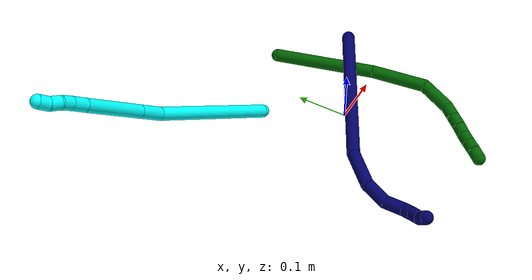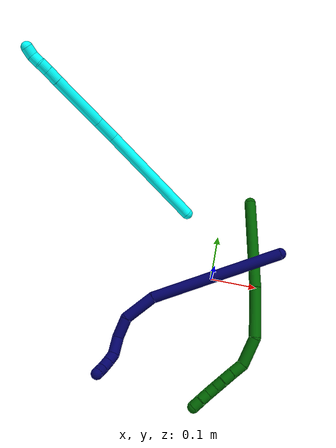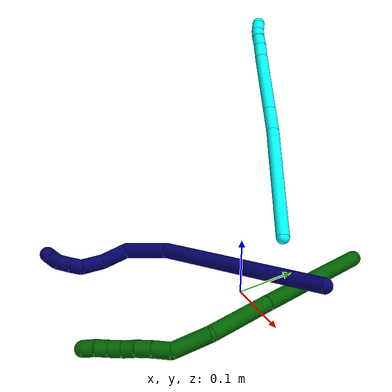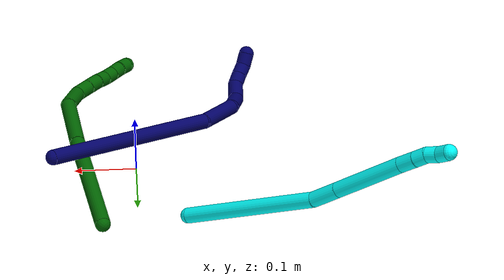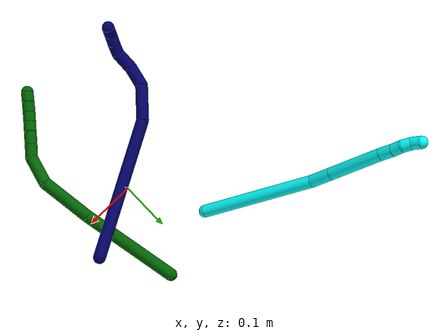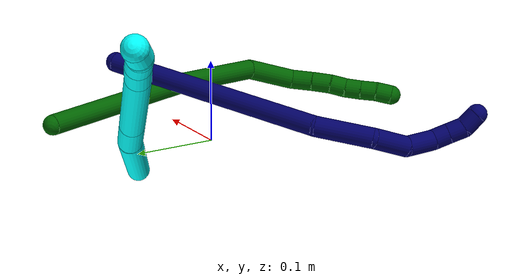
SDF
<sdf version="1.7">
 <world name="default">
  <model name="photoneo_s_sensor">
   <static>1</static>
   <pose>0 0 2 1.57079 1.57079 3.14159</pose>
   <link name="link">
    <inertial><mass>0.1</mass></inertial>
    <sensor name="sensor" type="depth">
     <update_rate>30</update_rate>
     <camera>
      <horizontal_fov>1.22</horizontal_fov>
      <image><width>1920</width><height>1200</height><format>B8G8R8</format></image>
      <clip><near>0.1</near><far>4</far></clip>
      <depth_camera><output>points</output></depth_camera>
     </camera>
     <plugin name="camera_plugin" filename="libgazebo_ros_depth_camera.so">
      <baseline>0.2</baseline>
      <alwaysOn>1</alwaysOn>
      <updateRate>0.0</updateRate>
      <cameraName>camera_ir</cameraName>
      <imageTopicName>/camera/color/image_raw</imageTopicName>
      <cameraInfoTopicName>/camera/color/camera_info</cameraInfoTopicName>
      <depthImageTopicName>/camera/depth/image_raw</depthImageTopicName>
      <depthImageCameraInfoTopicName>/camera/depth/camera_info</depthImageCameraInfoTopicName>
      <pointCloudTopicName>/camera/depth/points</pointCloudTopicName>
      <frameName>fr_optical</frameName>
      <pointCloudCutoff>0.1</pointCloudCutoff>
      <pointCloudCutoffMax>2.0</pointCloudCutoffMax>
      <distortionK1>0</distortionK1>
      <distortionK2>0</distortionK2>
      <distortionK3>0</distortionK3>
      <distortionT1>0</distortionT1>
      <distortionT2>0</distortionT2>
      <CxPrime>0</CxPrime>
      <Cx>0</Cx>
      <Cy>0</Cy>
      <focalLength>0</focalLength>
      <hackBaseline>0</hackBaseline>
     </plugin>
    </sensor>
   </link>
  </model>
  <model name="bin">
   <static>1</static>
   <link name="bottom">
    <collision name="collision-bottom">
     <pose>0 0 -0.01 0 -0 0</pose>
     <geometry><box><size>0.8 0.6 0.02</size></box></geometry>
     <surface>
      <friction><ode><mu>100</mu><mu2>100</mu2></ode></friction>
      <contact><collide_bitmask>65535</collide_bitmask></contact>
     </surface>
    </collision>
   </link>
   <link name="west_wall">
    <collision name="collision-west_wall">
     <pose>-0.41 0 0.1 0 -0 0</pose>
     <geometry><box><size>0.02 0.6 0.2</size></box></geometry>
     <surface>
      <friction><ode><mu>100</mu><mu2>100</mu2></ode></friction>
      <contact><collide_bitmask>65535</collide_bitmask></contact>
     </surface>
    </collision>
   </link>
   <link name="east_wall">
    <collision name="collision-east_wall">
     <pose>0.41 0 0.1 0 -0 0</pose>
     <geometry><box><size>0.02 0.6 0.2</size></box></geometry>
     <surface>
      <friction><ode><mu>100</mu><mu2>100</mu2></ode></friction>
      <contact><collide_bitmask>65535</collide_bitmask></contact>
     </surface>
    </collision>
   </link>
   <link name="south_wall">
    <collision name="collision-south_wall">
     <pose>0 -0.31 0.1 0 -0 0</pose>
     <geometry><box><size>0.8 0.02 0.2</size></box></geometry>
     <surface>
      <friction><ode><mu>100</mu><mu2>100</mu2></ode></friction>
      <contact><collide_bitmask>65535</collide_bitmask></contact>
     </surface>
    </collision>
   </link>
   <link name="north_wall">
    <collision name="collision-north_wall">
     <pose>0 0.31 0.1 0 -0 0</pose>
     <geometry><box><size>0.8 0.02 0.2</size></box></geometry>
     <surface>
      <friction><ode><mu>100</mu><mu2>100</mu2></ode></friction>
      <contact><collide_bitmask>65535</collide_bitmask></contact>
     </surface>
    </collision>
   </link>
  </model>
  <model name="3">
   <static>0</static>
   <link name="3">
    <collision name="collision-cylinder-e_1_1_4">
     <pose>-0.012061 0.01303 0.11854 -0.10948 -0.100792 0.005528</pose>
     <geometry><cylinder><radius>0.0125</radius><length>0.239725</length></cylinder></geometry>
     <surface>
      <friction><ode><mu>1.16</mu><mu2>1.16</mu2><slip1>0</slip1><slip2>0</slip2></ode></friction>
      <contact><ode><kp>1e+06</kp><kd>1</kd><max_vel>0</max_vel><min_depth>0.001</min_depth></ode></contact>
     </surface>
    </collision>
    <visual name="visual-cylinder-e_1_1_4">
     <pose>-0.012061 0.01303 0.11854 -0.10948 -0.100792 0.005528</pose>
     <geometry><cylinder><radius>0.0125</radius><length>0.239725</length></cylinder></geometry>
     <material><ambient>0.003922 1 0.996078 1</ambient></material>
    </visual>
    <collision name="collision-cylinder-e_2_4_5">
     <pose>-0.029994 0.025009 0.260518 0.044815 -0.245278 -0.005525</pose>
     <geometry><cylinder><radius>0.0125</radius><length>0.048371</length></cylinder></geometry>
     <surface>
      <friction><ode><mu>1.16</mu><mu2>1.16</mu2><slip1>0</slip1><slip2>0</slip2></ode></friction>
      <contact><ode><kp>1e+06</kp><kd>1</kd><max_vel>0</max_vel><min_depth>0.001</min_depth></ode></contact>
     </surface>
    </collision>
    <visual name="visual-cylinder-e_2_4_5">
     <pose>-0.029994 0.025009 0.260518 0.044815 -0.245278 -0.005525</pose>
     <geometry><cylinder><radius>0.0125</radius><length>0.048371</length></cylinder></geometry>
     <material><ambient>0.003922 1 0.996078 1</ambient></material>
    </visual>
    <collision name="collision-cylinder-e_3_5_6">
     <pose>-0.05082 0.021199 0.343002 0.046687 -0.247777 -0.005815</pose>
     <geometry><cylinder><radius>0.0125</radius><length>0.121943</length></cylinder></geometry>
     <surface>
      <friction><ode><mu>1.16</mu><mu2>1.16</mu2><slip1>0</slip1><slip2>0</slip2></ode></friction>
      <contact><ode><kp>1e+06</kp><kd>1</kd><max_vel>0</max_vel><min_depth>0.001</min_depth></ode></contact>
     </surface>
    </collision>
    <visual name="visual-cylinder-e_3_5_6">
     <pose>-0.05082 0.021199 0.343002 0.046687 -0.247777 -0.005815</pose>
     <geometry><cylinder><radius>0.0125</radius><length>0.121943</length></cylinder></geometry>
     <material><ambient>0.003922 1 0.996078 1</ambient></material>
    </visual>
    <collision name="collision-cylinder-e_4_6_7">
     <pose>-0.068657 0.01776 0.415965 0.04884 -0.20404 -0.005001</pose>
     <geometry><cylinder><radius>0.0125</radius><length>0.02846</length></cylinder></geometry>
     <surface>
      <friction><ode><mu>1.16</mu><mu2>1.16</mu2><slip1>0</slip1><slip2>0</slip2></ode></friction>
      <contact><ode><kp>1e+06</kp><kd>1</kd><max_vel>0</max_vel><min_depth>0.001</min_depth></ode></contact>
     </surface>
    </collision>
    <visual name="visual-cylinder-e_4_6_7">
     <pose>-0.068657 0.01776 0.415965 0.04884 -0.20404 -0.005001</pose>
     <geometry><cylinder><radius>0.0125</radius><length>0.02846</length></cylinder></geometry>
     <material><ambient>0.003922 1 0.996078 1</ambient></material>
    </visual>
    <collision name="collision-cylinder-e_5_7_8">
     <pose>-0.074314 0.017017 0.440088 0.006168 -0.265338 -0.000823</pose>
     <geometry><cylinder><radius>0.0125</radius><length>0.021152</length></cylinder></geometry>
     <surface>
      <friction><ode><mu>1.16</mu><mu2>1.16</mu2><slip1>0</slip1><slip2>0</slip2></ode></friction>
      <contact><ode><kp>1e+06</kp><kd>1</kd><max_vel>0</max_vel><min_depth>0.001</min_depth></ode></contact>
     </surface>
    </collision>
    <visual name="visual-cylinder-e_5_7_8">
     <pose>-0.074314 0.017017 0.440088 0.006168 -0.265338 -0.000823</pose>
     <geometry><cylinder><radius>0.0125</radius><length>0.021152</length></cylinder></geometry>
     <material><ambient>0.003922 1 0.996078 1</ambient></material>
    </visual>
    <collision name="collision-cylinder-e_6_8_9">
     <pose>-0.077675 0.019047 0.46012 -0.209875 -0.058485 0.006162</pose>
     <geometry><cylinder><radius>0.0125</radius><length>0.020128</length></cylinder></geometry>
     <surface>
      <friction><ode><mu>1.16</mu><mu2>1.16</mu2><slip1>0</slip1><slip2>0</slip2></ode></friction>
      <contact><ode><kp>1e+06</kp><kd>1</kd><max_vel>0</max_vel><min_depth>0.001</min_depth></ode></contact>
     </surface>
    </collision>
    <visual name="visual-cylinder-e_6_8_9">
     <pose>-0.077675 0.019047 0.46012 -0.209875 -0.058485 0.006162</pose>
     <geometry><cylinder><radius>0.0125</radius><length>0.020128</length></cylinder></geometry>
     <material><ambient>0.003922 1 0.996078 1</ambient></material>
    </visual>
    <collision name="collision-cylinder-e_7_9_2">
     <pose>-0.078443 0.020338 0.480024 0.079439 -0.017704 -0.000704</pose>
     <geometry><cylinder><radius>0.0125</radius><length>0.020222</length></cylinder></geometry>
     <surface>
      <friction><ode><mu>1.16</mu><mu2>1.16</mu2><slip1>0</slip1><slip2>0</slip2></ode></friction>
      <contact><ode><kp>1e+06</kp><kd>1</kd><max_vel>0</max_vel><min_depth>0.001</min_depth></ode></contact>
     </surface>
    </collision>
    <visual name="visual-cylinder-e_7_9_2">
     <pose>-0.078443 0.020338 0.480024 0.079439 -0.017704 -0.000704</pose>
     <geometry><cylinder><radius>0.0125</radius><length>0.020222</length></cylinder></geometry>
     <material><ambient>0.003922 1 0.996078 1</ambient></material>
    </visual>
    <collision name="collision-sphere-2">
     <pose>-0.078622 0.019535 0.490101 0 -0 0</pose>
     <geometry><sphere><radius>0.0125</radius></sphere></geometry>
     <surface>
      <friction><ode><mu>1.16</mu><mu2>1.16</mu2><slip1>0</slip1><slip2>0</slip2></ode></friction>
      <contact><ode><kp>1e+06</kp><kd>1</kd><max_vel>0</max_vel><min_depth>0.001</min_depth></ode></contact>
     </surface>
    </collision>
    <visual name="visual-sphere-2">
     <pose>-0.078622 0.019535 0.490101 0 -0 0</pose>
     <geometry><sphere><radius>0.0125</radius></sphere></geometry>
     <material><ambient>0.003922 1 0.996078 1</ambient></material>
    </visual>
    <collision name="collision-sphere-9">
     <pose>-0.078264 0.02114 0.469946 0 -0 0</pose>
     <geometry><sphere><radius>0.0125</radius></sphere></geometry>
     <surface>
      <friction><ode><mu>1.16</mu><mu2>1.16</mu2><slip1>0</slip1><slip2>0</slip2></ode></friction>
      <contact><ode><kp>1e+06</kp><kd>1</kd><max_vel>0</max_vel><min_depth>0.001</min_depth></ode></contact>
     </surface>
    </collision>
    <visual name="visual-sphere-9">
     <pose>-0.078264 0.02114 0.469946 0 -0 0</pose>
     <geometry><sphere><radius>0.0125</radius></sphere></geometry>
     <material><ambient>0.003922 1 0.996078 1</ambient></material>
    </visual>
    <collision name="collision-sphere-4">
     <pose>-0.024122 0.02606 0.23708 0 -0 0</pose>
     <geometry><sphere><radius>0.0125</radius></sphere></geometry>
     <surface>
      <friction><ode><mu>1.16</mu><mu2>1.16</mu2><slip1>0</slip1><slip2>0</slip2></ode></friction>
      <contact><ode><kp>1e+06</kp><kd>1</kd><max_vel>0</max_vel><min_depth>0.001</min_depth></ode></contact>
     </surface>
    </collision>
    <visual name="visual-sphere-4">
     <pose>-0.024122 0.02606 0.23708 0 -0 0</pose>
     <geometry><sphere><radius>0.0125</radius></sphere></geometry>
     <material><ambient>0.003922 1 0.996078 1</ambient></material>
    </visual>
    <collision name="collision-sphere-1">
     <geometry><sphere><radius>0.0125</radius></sphere></geometry>
     <surface>
      <friction><ode><mu>1.16</mu><mu2>1.16</mu2><slip1>0</slip1><slip2>0</slip2></ode></friction>
      <contact><ode><kp>1e+06</kp><kd>1</kd><max_vel>0</max_vel><min_depth>0.001</min_depth></ode></contact>
     </surface>
    </collision>
    <visual name="visual-sphere-1">
     <geometry><sphere><radius>0.0125</radius></sphere></geometry>
     <material><ambient>0.003922 1 0.996078 1</ambient></material>
    </visual>
    <collision name="collision-sphere-8">
     <pose>-0.077087 0.016954 0.450294 0 -0 0</pose>
     <geometry><sphere><radius>0.0125</radius></sphere></geometry>
     <surface>
      <friction><ode><mu>1.16</mu><mu2>1.16</mu2><slip1>0</slip1><slip2>0</slip2></ode></friction>
      <contact><ode><kp>1e+06</kp><kd>1</kd><max_vel>0</max_vel><min_depth>0.001</min_depth></ode></contact>
     </surface>
    </collision>
    <visual name="visual-sphere-8">
     <pose>-0.077087 0.016954 0.450294 0 -0 0</pose>
     <geometry><sphere><radius>0.0125</radius></sphere></geometry>
     <material><ambient>0.003922 1 0.996078 1</ambient></material>
    </visual>
    <collision name="collision-sphere-5">
     <pose>-0.035867 0.023958 0.283957 0 -0 0</pose>
     <geometry><sphere><radius>0.0125</radius></sphere></geometry>
     <surface>
      <friction><ode><mu>1.16</mu><mu2>1.16</mu2><slip1>0</slip1><slip2>0</slip2></ode></friction>
      <contact><ode><kp>1e+06</kp><kd>1</kd><max_vel>0</max_vel><min_depth>0.001</min_depth></ode></contact>
     </surface>
    </collision>
    <visual name="visual-sphere-5">
     <pose>-0.035867 0.023958 0.283957 0 -0 0</pose>
     <geometry><sphere><radius>0.0125</radius></sphere></geometry>
     <material><ambient>0.003922 1 0.996078 1</ambient></material>
    </visual>
    <collision name="collision-sphere-6">
     <pose>-0.065774 0.01844 0.402046 0 -0 0</pose>
     <geometry><sphere><radius>0.0125</radius></sphere></geometry>
     <surface>
      <friction><ode><mu>1.16</mu><mu2>1.16</mu2><slip1>0</slip1><slip2>0</slip2></ode></friction>
      <contact><ode><kp>1e+06</kp><kd>1</kd><max_vel>0</max_vel><min_depth>0.001</min_depth></ode></contact>
     </surface>
    </collision>
    <visual name="visual-sphere-6">
     <pose>-0.065774 0.01844 0.402046 0 -0 0</pose>
     <geometry><sphere><radius>0.0125</radius></sphere></geometry>
     <material><ambient>0.003922 1 0.996078 1</ambient></material>
    </visual>
    <collision name="collision-sphere-7">
     <pose>-0.07154 0.01708 0.429883 0 -0 0</pose>
     <geometry><sphere><radius>0.0125</radius></sphere></geometry>
     <surface>
      <friction><ode><mu>1.16</mu><mu2>1.16</mu2><slip1>0</slip1><slip2>0</slip2></ode></friction>
      <contact><ode><kp>1e+06</kp><kd>1</kd><max_vel>0</max_vel><min_depth>0.001</min_depth></ode></contact>
     </surface>
    </collision>
    <visual name="visual-sphere-7">
     <pose>-0.07154 0.01708 0.429883 0 -0 0</pose>
     <geometry><sphere><radius>0.0125</radius></sphere></geometry>
     <material><ambient>0.003922 1 0.996078 1</ambient></material>
    </visual>
    <inertial>
     <pose>-0.03443 0.017157 0.24592 0 -0 0</pose>
     <mass>0.5</mass>
     <inertia><ixx>0.00132</ixx><ixy>0</ixy><ixz>0</ixz><iyy>0.001332</iyy><iyz>0</iyz><izz>7.9e-05</izz></inertia>
    </inertial>
   </link>
   <pose>-0.079342 0.139931 0.011487 -1.0122 0.38268 1.14662</pose>
  </model>
  <model name="6">
   <static>0</static>
   <link name="6">
    <collision name="collision-cylinder-e_1_1_4">
     <pose>0.036611 -0.050736 0.078572 0.573364 0.373105 0.111172</pose>
     <geometry><cylinder><radius>0.0125</radius><length>0.200879</length></cylinder></geometry>
     <surface>
      <friction><ode><mu>1.16</mu><mu2>1.16</mu2><slip1>0</slip1><slip2>0</slip2></ode></friction>
      <contact><ode><kp>1e+06</kp><kd>1</kd><max_vel>0</max_vel><min_depth>0.001</min_depth></ode></contact>
     </surface>
    </collision>
    <visual name="visual-cylinder-e_1_1_4">
     <pose>0.036611 -0.050736 0.078572 0.573364 0.373105 0.111172</pose>
     <geometry><cylinder><radius>0.0125</radius><length>0.200879</length></cylinder></geometry>
     <material><ambient>0 0.392157 0.003922 1</ambient></material>
    </visual>
    <collision name="collision-cylinder-e_2_4_5">
     <pose>0.096732 -0.129204 0.195959 0.62037 0.45791 0.149117</pose>
     <geometry><cylinder><radius>0.0125</radius><length>0.106365</length></cylinder></geometry>
     <surface>
      <friction><ode><mu>1.16</mu><mu2>1.16</mu2><slip1>0</slip1><slip2>0</slip2></ode></friction>
      <contact><ode><kp>1e+06</kp><kd>1</kd><max_vel>0</max_vel><min_depth>0.001</min_depth></ode></contact>
     </surface>
    </collision>
    <visual name="visual-cylinder-e_2_4_5">
     <pose>0.096732 -0.129204 0.195959 0.62037 0.45791 0.149117</pose>
     <geometry><cylinder><radius>0.0125</radius><length>0.106365</length></cylinder></geometry>
     <material><ambient>0 0.392157 0.003922 1</ambient></material>
    </visual>
    <collision name="collision-cylinder-e_3_5_6">
     <pose>0.140982 -0.176184 0.244881 1.08726 0.761805 0.474922</pose>
     <geometry><cylinder><radius>0.0125</radius><length>0.060093</length></cylinder></geometry>
     <surface>
      <friction><ode><mu>1.16</mu><mu2>1.16</mu2><slip1>0</slip1><slip2>0</slip2></ode></friction>
      <contact><ode><kp>1e+06</kp><kd>1</kd><max_vel>0</max_vel><min_depth>0.001</min_depth></ode></contact>
     </surface>
    </collision>
    <visual name="visual-cylinder-e_3_5_6">
     <pose>0.140982 -0.176184 0.244881 1.08726 0.761805 0.474922</pose>
     <geometry><cylinder><radius>0.0125</radius><length>0.060093</length></cylinder></geometry>
     <material><ambient>0 0.392157 0.003922 1</ambient></material>
    </visual>
    <collision name="collision-cylinder-e_4_6_7">
     <pose>0.16766 -0.20814 0.254921 1.57614 0.437189 0.439456</pose>
     <geometry><cylinder><radius>0.0125</radius><length>0.028053</length></cylinder></geometry>
     <surface>
      <friction><ode><mu>1.16</mu><mu2>1.16</mu2><slip1>0</slip1><slip2>0</slip2></ode></friction>
      <contact><ode><kp>1e+06</kp><kd>1</kd><max_vel>0</max_vel><min_depth>0.001</min_depth></ode></contact>
     </surface>
    </collision>
    <visual name="visual-cylinder-e_4_6_7">
     <pose>0.16766 -0.20814 0.254921 1.57614 0.437189 0.439456</pose>
     <geometry><cylinder><radius>0.0125</radius><length>0.028053</length></cylinder></geometry>
     <material><ambient>0 0.392157 0.003922 1</ambient></material>
    </visual>
    <collision name="collision-cylinder-e_5_7_8">
     <pose>0.179258 -0.231619 0.254943 1.56241 0.483754 0.479869</pose>
     <geometry><cylinder><radius>0.0125</radius><length>0.024336</length></cylinder></geometry>
     <surface>
      <friction><ode><mu>1.16</mu><mu2>1.16</mu2><slip1>0</slip1><slip2>0</slip2></ode></friction>
      <contact><ode><kp>1e+06</kp><kd>1</kd><max_vel>0</max_vel><min_depth>0.001</min_depth></ode></contact>
     </surface>
    </collision>
    <visual name="visual-cylinder-e_5_7_8">
     <pose>0.179258 -0.231619 0.254943 1.56241 0.483754 0.479869</pose>
     <geometry><cylinder><radius>0.0125</radius><length>0.024336</length></cylinder></geometry>
     <material><ambient>0 0.392157 0.003922 1</ambient></material>
    </visual>
    <collision name="collision-cylinder-e_6_8_9">
     <pose>0.190533 -0.250667 0.254745 1.60569 0.595909 0.615779</pose>
     <geometry><cylinder><radius>0.0125</radius><length>0.020013</length></cylinder></geometry>
     <surface>
      <friction><ode><mu>1.16</mu><mu2>1.16</mu2><slip1>0</slip1><slip2>0</slip2></ode></friction>
      <contact><ode><kp>1e+06</kp><kd>1</kd><max_vel>0</max_vel><min_depth>0.001</min_depth></ode></contact>
     </surface>
    </collision>
    <visual name="visual-cylinder-e_6_8_9">
     <pose>0.190533 -0.250667 0.254745 1.60569 0.595909 0.615779</pose>
     <geometry><cylinder><radius>0.0125</radius><length>0.020013</length></cylinder></geometry>
     <material><ambient>0 0.392157 0.003922 1</ambient></material>
    </visual>
    <collision name="collision-cylinder-e_7_9_10">
     <pose>0.200857 -0.26791 0.254525 1.56311 0.483461 0.4799</pose>
     <geometry><cylinder><radius>0.0125</radius><length>0.020254</length></cylinder></geometry>
     <surface>
      <friction><ode><mu>1.16</mu><mu2>1.16</mu2><slip1>0</slip1><slip2>0</slip2></ode></friction>
      <contact><ode><kp>1e+06</kp><kd>1</kd><max_vel>0</max_vel><min_depth>0.001</min_depth></ode></contact>
     </surface>
    </collision>
    <visual name="visual-cylinder-e_7_9_10">
     <pose>0.200857 -0.26791 0.254525 1.56311 0.483461 0.4799</pose>
     <geometry><cylinder><radius>0.0125</radius><length>0.020254</length></cylinder></geometry>
     <material><ambient>0 0.392157 0.003922 1</ambient></material>
    </visual>
    <collision name="collision-cylinder-e_8_10_11">
     <pose>0.209933 -0.285866 0.254938 1.53251 0.452045 0.4356</pose>
     <geometry><cylinder><radius>0.0125</radius><length>0.020002</length></cylinder></geometry>
     <surface>
      <friction><ode><mu>1.16</mu><mu2>1.16</mu2><slip1>0</slip1><slip2>0</slip2></ode></friction>
      <contact><ode><kp>1e+06</kp><kd>1</kd><max_vel>0</max_vel><min_depth>0.001</min_depth></ode></contact>
     </surface>
    </collision>
    <visual name="visual-cylinder-e_8_10_11">
     <pose>0.209933 -0.285866 0.254938 1.53251 0.452045 0.4356</pose>
     <geometry><cylinder><radius>0.0125</radius><length>0.020002</length></cylinder></geometry>
     <material><ambient>0 0.392157 0.003922 1</ambient></material>
    </visual>
    <collision name="collision-cylinder-e_9_11_2">
     <pose>0.219837 -0.303186 0.255436 1.55238 0.586411 0.576298</pose>
     <geometry><cylinder><radius>0.0125</radius><length>0.020005</length></cylinder></geometry>
     <surface>
      <friction><ode><mu>1.16</mu><mu2>1.16</mu2><slip1>0</slip1><slip2>0</slip2></ode></friction>
      <contact><ode><kp>1e+06</kp><kd>1</kd><max_vel>0</max_vel><min_depth>0.001</min_depth></ode></contact>
     </surface>
    </collision>
    <visual name="visual-cylinder-e_9_11_2">
     <pose>0.219837 -0.303186 0.255436 1.55238 0.586411 0.576298</pose>
     <geometry><cylinder><radius>0.0125</radius><length>0.020005</length></cylinder></geometry>
     <material><ambient>0 0.392157 0.003922 1</ambient></material>
    </visual>
    <collision name="collision-sphere-2">
     <pose>0.225372 -0.311516 0.255589 0 -0 0</pose>
     <geometry><sphere><radius>0.0125</radius></sphere></geometry>
     <surface>
      <friction><ode><mu>1.16</mu><mu2>1.16</mu2><slip1>0</slip1><slip2>0</slip2></ode></friction>
      <contact><ode><kp>1e+06</kp><kd>1</kd><max_vel>0</max_vel><min_depth>0.001</min_depth></ode></contact>
     </surface>
    </collision>
    <visual name="visual-sphere-2">
     <pose>0.225372 -0.311516 0.255589 0 -0 0</pose>
     <geometry><sphere><radius>0.0125</radius></sphere></geometry>
     <material><ambient>0 0.392157 0.003922 1</ambient></material>
    </visual>
    <collision name="collision-sphere-11">
     <pose>0.214302 -0.294856 0.255283 0 -0 0</pose>
     <geometry><sphere><radius>0.0125</radius></sphere></geometry>
     <surface>
      <friction><ode><mu>1.16</mu><mu2>1.16</mu2><slip1>0</slip1><slip2>0</slip2></ode></friction>
      <contact><ode><kp>1e+06</kp><kd>1</kd><max_vel>0</max_vel><min_depth>0.001</min_depth></ode></contact>
     </surface>
    </collision>
    <visual name="visual-sphere-11">
     <pose>0.214302 -0.294856 0.255283 0 -0 0</pose>
     <geometry><sphere><radius>0.0125</radius></sphere></geometry>
     <material><ambient>0 0.392157 0.003922 1</ambient></material>
    </visual>
    <collision name="collision-sphere-10">
     <pose>0.205565 -0.276876 0.254594 0 -0 0</pose>
     <geometry><sphere><radius>0.0125</radius></sphere></geometry>
     <surface>
      <friction><ode><mu>1.16</mu><mu2>1.16</mu2><slip1>0</slip1><slip2>0</slip2></ode></friction>
      <contact><ode><kp>1e+06</kp><kd>1</kd><max_vel>0</max_vel><min_depth>0.001</min_depth></ode></contact>
     </surface>
    </collision>
    <visual name="visual-sphere-10">
     <pose>0.205565 -0.276876 0.254594 0 -0 0</pose>
     <geometry><sphere><radius>0.0125</radius></sphere></geometry>
     <material><ambient>0 0.392157 0.003922 1</ambient></material>
    </visual>
    <collision name="collision-sphere-9">
     <pose>0.19615 -0.258943 0.254456 0 -0 0</pose>
     <geometry><sphere><radius>0.0125</radius></sphere></geometry>
     <surface>
      <friction><ode><mu>1.16</mu><mu2>1.16</mu2><slip1>0</slip1><slip2>0</slip2></ode></friction>
      <contact><ode><kp>1e+06</kp><kd>1</kd><max_vel>0</max_vel><min_depth>0.001</min_depth></ode></contact>
     </surface>
    </collision>
    <visual name="visual-sphere-9">
     <pose>0.19615 -0.258943 0.254456 0 -0 0</pose>
     <geometry><sphere><radius>0.0125</radius></sphere></geometry>
     <material><ambient>0 0.392157 0.003922 1</ambient></material>
    </visual>
    <collision name="collision-sphere-4">
     <pose>0.073222 -0.101472 0.157144 0 -0 0</pose>
     <geometry><sphere><radius>0.0125</radius></sphere></geometry>
     <surface>
      <friction><ode><mu>1.16</mu><mu2>1.16</mu2><slip1>0</slip1><slip2>0</slip2></ode></friction>
      <contact><ode><kp>1e+06</kp><kd>1</kd><max_vel>0</max_vel><min_depth>0.001</min_depth></ode></contact>
     </surface>
    </collision>
    <visual name="visual-sphere-4">
     <pose>0.073222 -0.101472 0.157144 0 -0 0</pose>
     <geometry><sphere><radius>0.0125</radius></sphere></geometry>
     <material><ambient>0 0.392157 0.003922 1</ambient></material>
    </visual>
    <collision name="collision-sphere-1">
     <geometry><sphere><radius>0.0125</radius></sphere></geometry>
     <surface>
      <friction><ode><mu>1.16</mu><mu2>1.16</mu2><slip1>0</slip1><slip2>0</slip2></ode></friction>
      <contact><ode><kp>1e+06</kp><kd>1</kd><max_vel>0</max_vel><min_depth>0.001</min_depth></ode></contact>
     </surface>
    </collision>
    <visual name="visual-sphere-1">
     <geometry><sphere><radius>0.0125</radius></sphere></geometry>
     <material><ambient>0 0.392157 0.003922 1</ambient></material>
    </visual>
    <collision name="collision-sphere-8">
     <pose>0.184917 -0.24239 0.255034 0 -0 0</pose>
     <geometry><sphere><radius>0.0125</radius></sphere></geometry>
     <surface>
      <friction><ode><mu>1.16</mu><mu2>1.16</mu2><slip1>0</slip1><slip2>0</slip2></ode></friction>
      <contact><ode><kp>1e+06</kp><kd>1</kd><max_vel>0</max_vel><min_depth>0.001</min_depth></ode></contact>
     </surface>
    </collision>
    <visual name="visual-sphere-8">
     <pose>0.184917 -0.24239 0.255034 0 -0 0</pose>
     <geometry><sphere><radius>0.0125</radius></sphere></geometry>
     <material><ambient>0 0.392157 0.003922 1</ambient></material>
    </visual>
    <collision name="collision-sphere-5">
     <pose>0.120243 -0.156935 0.234773 0 -0 0</pose>
     <geometry><sphere><radius>0.0125</radius></sphere></geometry>
     <surface>
      <friction><ode><mu>1.16</mu><mu2>1.16</mu2><slip1>0</slip1><slip2>0</slip2></ode></friction>
      <contact><ode><kp>1e+06</kp><kd>1</kd><max_vel>0</max_vel><min_depth>0.001</min_depth></ode></contact>
     </surface>
    </collision>
    <visual name="visual-sphere-5">
     <pose>0.120243 -0.156935 0.234773 0 -0 0</pose>
     <geometry><sphere><radius>0.0125</radius></sphere></geometry>
     <material><ambient>0 0.392157 0.003922 1</ambient></material>
    </visual>
    <collision name="collision-sphere-6">
     <pose>0.161721 -0.195433 0.254989 0 -0 0</pose>
     <geometry><sphere><radius>0.0125</radius></sphere></geometry>
     <surface>
      <friction><ode><mu>1.16</mu><mu2>1.16</mu2><slip1>0</slip1><slip2>0</slip2></ode></friction>
      <contact><ode><kp>1e+06</kp><kd>1</kd><max_vel>0</max_vel><min_depth>0.001</min_depth></ode></contact>
     </surface>
    </collision>
    <visual name="visual-sphere-6">
     <pose>0.161721 -0.195433 0.254989 0 -0 0</pose>
     <geometry><sphere><radius>0.0125</radius></sphere></geometry>
     <material><ambient>0 0.392157 0.003922 1</ambient></material>
    </visual>
    <collision name="collision-sphere-7">
     <pose>0.173598 -0.220847 0.254853 0 -0 0</pose>
     <geometry><sphere><radius>0.0125</radius></sphere></geometry>
     <surface>
      <friction><ode><mu>1.16</mu><mu2>1.16</mu2><slip1>0</slip1><slip2>0</slip2></ode></friction>
      <contact><ode><kp>1e+06</kp><kd>1</kd><max_vel>0</max_vel><min_depth>0.001</min_depth></ode></contact>
     </surface>
    </collision>
    <visual name="visual-sphere-7">
     <pose>0.173598 -0.220847 0.254853 0 -0 0</pose>
     <geometry><sphere><radius>0.0125</radius></sphere></geometry>
     <material><ambient>0 0.392157 0.003922 1</ambient></material>
    </visual>
    <inertial>
     <pose>0.103319 -0.136447 0.170321 0 -0 0</pose>
     <mass>0.5</mass>
     <inertia>
      <ixx>0.00086</ixx>
      <ixy>0</ixy>
      <ixz>0</ixz>
      <iyy>0.000762</iyy>
      <iyz>0</iyz>
      <izz>0.000128</izz>
     </inertia>
    </inertial>
   </link>
   <pose>0.056183 0.183046 0.034968 -0.907761 1.10944 -1.69239</pose>
  </model>
  <model name="7">
   <static>0</static>
   <link name="7">
    <collision name="collision-cylinder-e_1_1_4">
     <pose>-0.110193 -0.082719 0.036752 1.15269 -0.883124 -0.596152</pose>
     <geometry><cylinder><radius>0.0125</radius><length>0.285207</length></cylinder></geometry>
     <surface>
      <friction><ode><mu>1.16</mu><mu2>1.16</mu2><slip1>0</slip1><slip2>0</slip2></ode></friction>
      <contact><ode><kp>1e+06</kp><kd>1</kd><max_vel>0</max_vel><min_depth>0.001</min_depth></ode></contact>
     </surface>
    </collision>
    <visual name="visual-cylinder-e_1_1_4">
     <pose>-0.110193 -0.082719 0.036752 1.15269 -0.883124 -0.596152</pose>
     <geometry><cylinder><radius>0.0125</radius><length>0.285207</length></cylinder></geometry>
     <material><ambient>0.003922 0 0.403922 1</ambient></material>
    </visual>
    <collision name="collision-cylinder-e_2_4_5">
     <pose>-0.239777 -0.189523 0.090293 0.962028 -0.583706 -0.311058</pose>
     <geometry><cylinder><radius>0.0125</radius><length>0.070367</length></cylinder></geometry>
     <surface>
      <friction><ode><mu>1.16</mu><mu2>1.16</mu2><slip1>0</slip1><slip2>0</slip2></ode></friction>
      <contact><ode><kp>1e+06</kp><kd>1</kd><max_vel>0</max_vel><min_depth>0.001</min_depth></ode></contact>
     </surface>
    </collision>
    <visual name="visual-cylinder-e_2_4_5">
     <pose>-0.239777 -0.189523 0.090293 0.962028 -0.583706 -0.311058</pose>
     <geometry><cylinder><radius>0.0125</radius><length>0.070367</length></cylinder></geometry>
     <material><ambient>0.003922 0 0.403922 1</ambient></material>
    </visual>
    <collision name="collision-cylinder-e_3_5_6">
     <pose>-0.260538 -0.231832 0.119638 0.967514 -0.061817 -0.032486</pose>
     <geometry><cylinder><radius>0.0125</radius><length>0.044349</length></cylinder></geometry>
     <surface>
      <friction><ode><mu>1.16</mu><mu2>1.16</mu2><slip1>0</slip1><slip2>0</slip2></ode></friction>
      <contact><ode><kp>1e+06</kp><kd>1</kd><max_vel>0</max_vel><min_depth>0.001</min_depth></ode></contact>
     </surface>
    </collision>
    <visual name="visual-cylinder-e_3_5_6">
     <pose>-0.260538 -0.231832 0.119638 0.967514 -0.061817 -0.032486</pose>
     <geometry><cylinder><radius>0.0125</radius><length>0.044349</length></cylinder></geometry>
     <material><ambient>0.003922 0 0.403922 1</ambient></material>
    </visual>
    <collision name="collision-cylinder-e_4_6_7">
     <pose>-0.26127 -0.259896 0.148445 0.544404 0.033542 0.009363</pose>
     <geometry><cylinder><radius>0.0125</radius><length>0.038015</length></cylinder></geometry>
     <surface>
      <friction><ode><mu>1.16</mu><mu2>1.16</mu2><slip1>0</slip1><slip2>0</slip2></ode></friction>
      <contact><ode><kp>1e+06</kp><kd>1</kd><max_vel>0</max_vel><min_depth>0.001</min_depth></ode></contact>
     </surface>
    </collision>
    <visual name="visual-cylinder-e_4_6_7">
     <pose>-0.26127 -0.259896 0.148445 0.544404 0.033542 0.009363</pose>
     <geometry><cylinder><radius>0.0125</radius><length>0.038015</length></cylinder></geometry>
     <material><ambient>0.003922 0 0.403922 1</ambient></material>
    </visual>
    <collision name="collision-cylinder-e_5_7_8">
     <pose>-0.264136 -0.27263 0.173613 0.314003 -0.357554 -0.057198</pose>
     <geometry><cylinder><radius>0.0125</radius><length>0.020018</length></cylinder></geometry>
     <surface>
      <friction><ode><mu>1.16</mu><mu2>1.16</mu2><slip1>0</slip1><slip2>0</slip2></ode></friction>
      <contact><ode><kp>1e+06</kp><kd>1</kd><max_vel>0</max_vel><min_depth>0.001</min_depth></ode></contact>
     </surface>
    </collision>
    <visual name="visual-cylinder-e_5_7_8">
     <pose>-0.264136 -0.27263 0.173613 0.314003 -0.357554 -0.057198</pose>
     <geometry><cylinder><radius>0.0125</radius><length>0.020018</length></cylinder></geometry>
     <material><ambient>0.003922 0 0.403922 1</ambient></material>
    </visual>
    <collision name="collision-cylinder-e_6_8_9">
     <pose>-0.271859 -0.278405 0.191501 0.310501 -0.421227 -0.066894</pose>
     <geometry><cylinder><radius>0.0125</radius><length>0.020645</length></cylinder></geometry>
     <surface>
      <friction><ode><mu>1.16</mu><mu2>1.16</mu2><slip1>0</slip1><slip2>0</slip2></ode></friction>
      <contact><ode><kp>1e+06</kp><kd>1</kd><max_vel>0</max_vel><min_depth>0.001</min_depth></ode></contact>
     </surface>
    </collision>
    <visual name="visual-cylinder-e_6_8_9">
     <pose>-0.271859 -0.278405 0.191501 0.310501 -0.421227 -0.066894</pose>
     <geometry><cylinder><radius>0.0125</radius><length>0.020645</length></cylinder></geometry>
     <material><ambient>0.003922 0 0.403922 1</ambient></material>
    </visual>
    <collision name="collision-cylinder-e_7_9_2">
     <pose>-0.280418 -0.279429 0.210073 -0.190724 -0.417508 0.04052</pose>
     <geometry><cylinder><radius>0.0125</radius><length>0.021398</length></cylinder></geometry>
     <surface>
      <friction><ode><mu>1.16</mu><mu2>1.16</mu2><slip1>0</slip1><slip2>0</slip2></ode></friction>
      <contact><ode><kp>1e+06</kp><kd>1</kd><max_vel>0</max_vel><min_depth>0.001</min_depth></ode></contact>
     </surface>
    </collision>
    <visual name="visual-cylinder-e_7_9_2">
     <pose>-0.280418 -0.279429 0.210073 -0.190724 -0.417508 0.04052</pose>
     <geometry><cylinder><radius>0.0125</radius><length>0.021398</length></cylinder></geometry>
     <material><ambient>0.003922 0 0.403922 1</ambient></material>
    </visual>
    <collision name="collision-sphere-2">
     <pose>-0.284757 -0.277575 0.219676 0 -0 0</pose>
     <geometry><sphere><radius>0.0125</radius></sphere></geometry>
     <surface>
      <friction><ode><mu>1.16</mu><mu2>1.16</mu2><slip1>0</slip1><slip2>0</slip2></ode></friction>
      <contact><ode><kp>1e+06</kp><kd>1</kd><max_vel>0</max_vel><min_depth>0.001</min_depth></ode></contact>
     </surface>
    </collision>
    <visual name="visual-sphere-2">
     <pose>-0.284757 -0.277575 0.219676 0 -0 0</pose>
     <geometry><sphere><radius>0.0125</radius></sphere></geometry>
     <material><ambient>0.003922 0 0.403922 1</ambient></material>
    </visual>
    <collision name="collision-sphere-9">
     <pose>-0.27608 -0.281283 0.20047 0 -0 0</pose>
     <geometry><sphere><radius>0.0125</radius></sphere></geometry>
     <surface>
      <friction><ode><mu>1.16</mu><mu2>1.16</mu2><slip1>0</slip1><slip2>0</slip2></ode></friction>
      <contact><ode><kp>1e+06</kp><kd>1</kd><max_vel>0</max_vel><min_depth>0.001</min_depth></ode></contact>
     </surface>
    </collision>
    <visual name="visual-sphere-9">
     <pose>-0.27608 -0.281283 0.20047 0 -0 0</pose>
     <geometry><sphere><radius>0.0125</radius></sphere></geometry>
     <material><ambient>0.003922 0 0.403922 1</ambient></material>
    </visual>
    <collision name="collision-sphere-4">
     <pose>-0.220387 -0.165438 0.073504 0 -0 0</pose>
     <geometry><sphere><radius>0.0125</radius></sphere></geometry>
     <surface>
      <friction><ode><mu>1.16</mu><mu2>1.16</mu2><slip1>0</slip1><slip2>0</slip2></ode></friction>
      <contact><ode><kp>1e+06</kp><kd>1</kd><max_vel>0</max_vel><min_depth>0.001</min_depth></ode></contact>
     </surface>
    </collision>
    <visual name="visual-sphere-4">
     <pose>-0.220387 -0.165438 0.073504 0 -0 0</pose>
     <geometry><sphere><radius>0.0125</radius></sphere></geometry>
     <material><ambient>0.003922 0 0.403922 1</ambient></material>
    </visual>
    <collision name="collision-sphere-1">
     <geometry><sphere><radius>0.0125</radius></sphere></geometry>
     <surface>
      <friction><ode><mu>1.16</mu><mu2>1.16</mu2><slip1>0</slip1><slip2>0</slip2></ode></friction>
      <contact><ode><kp>1e+06</kp><kd>1</kd><max_vel>0</max_vel><min_depth>0.001</min_depth></ode></contact>
     </surface>
    </collision>
    <visual name="visual-sphere-1">
     <geometry><sphere><radius>0.0125</radius></sphere></geometry>
     <material><ambient>0.003922 0 0.403922 1</ambient></material>
    </visual>
    <collision name="collision-sphere-8">
     <pose>-0.267639 -0.275526 0.182531 0 -0 0</pose>
     <geometry><sphere><radius>0.0125</radius></sphere></geometry>
     <surface>
      <friction><ode><mu>1.16</mu><mu2>1.16</mu2><slip1>0</slip1><slip2>0</slip2></ode></friction>
      <contact><ode><kp>1e+06</kp><kd>1</kd><max_vel>0</max_vel><min_depth>0.001</min_depth></ode></contact>
     </surface>
    </collision>
    <visual name="visual-sphere-8">
     <pose>-0.267639 -0.275526 0.182531 0 -0 0</pose>
     <geometry><sphere><radius>0.0125</radius></sphere></geometry>
     <material><ambient>0.003922 0 0.403922 1</ambient></material>
    </visual>
    <collision name="collision-sphere-5">
     <pose>-0.259168 -0.213607 0.107082 0 -0 0</pose>
     <geometry><sphere><radius>0.0125</radius></sphere></geometry>
     <surface>
      <friction><ode><mu>1.16</mu><mu2>1.16</mu2><slip1>0</slip1><slip2>0</slip2></ode></friction>
      <contact><ode><kp>1e+06</kp><kd>1</kd><max_vel>0</max_vel><min_depth>0.001</min_depth></ode></contact>
     </surface>
    </collision>
    <visual name="visual-sphere-5">
     <pose>-0.259168 -0.213607 0.107082 0 -0 0</pose>
     <geometry><sphere><radius>0.0125</radius></sphere></geometry>
     <material><ambient>0.003922 0 0.403922 1</ambient></material>
    </visual>
    <collision name="collision-sphere-6">
     <pose>-0.261908 -0.250057 0.132195 0 -0 0</pose>
     <geometry><sphere><radius>0.0125</radius></sphere></geometry>
     <surface>
      <friction><ode><mu>1.16</mu><mu2>1.16</mu2><slip1>0</slip1><slip2>0</slip2></ode></friction>
      <contact><ode><kp>1e+06</kp><kd>1</kd><max_vel>0</max_vel><min_depth>0.001</min_depth></ode></contact>
     </surface>
    </collision>
    <visual name="visual-sphere-6">
     <pose>-0.261908 -0.250057 0.132195 0 -0 0</pose>
     <geometry><sphere><radius>0.0125</radius></sphere></geometry>
     <material><ambient>0.003922 0 0.403922 1</ambient></material>
    </visual>
    <collision name="collision-sphere-7">
     <pose>-0.260633 -0.269734 0.164696 0 -0 0</pose>
     <geometry><sphere><radius>0.0125</radius></sphere></geometry>
     <surface>
      <friction><ode><mu>1.16</mu><mu2>1.16</mu2><slip1>0</slip1><slip2>0</slip2></ode></friction>
      <contact><ode><kp>1e+06</kp><kd>1</kd><max_vel>0</max_vel><min_depth>0.001</min_depth></ode></contact>
     </surface>
    </collision>
    <visual name="visual-sphere-7">
     <pose>-0.260633 -0.269734 0.164696 0 -0 0</pose>
     <geometry><sphere><radius>0.0125</radius></sphere></geometry>
     <material><ambient>0.003922 0 0.403922 1</ambient></material>
    </visual>
    <inertial>
     <pose>-0.173376 -0.148549 0.079418 0 -0 0</pose>
     <mass>0.5</mass>
     <inertia><ixx>0.000342</ixx><ixy>0</ixy><ixz>0</ixz><iyy>0.000738</iyy><iyz>0</iyz><izz>0.0027</izz></inertia>
    </inertial>
   </link>
   <pose>0.131898 0.061539 0.076726 0.962842 0.236684 -0.076872</pose>
  </model>
 </world>
</sdf>
